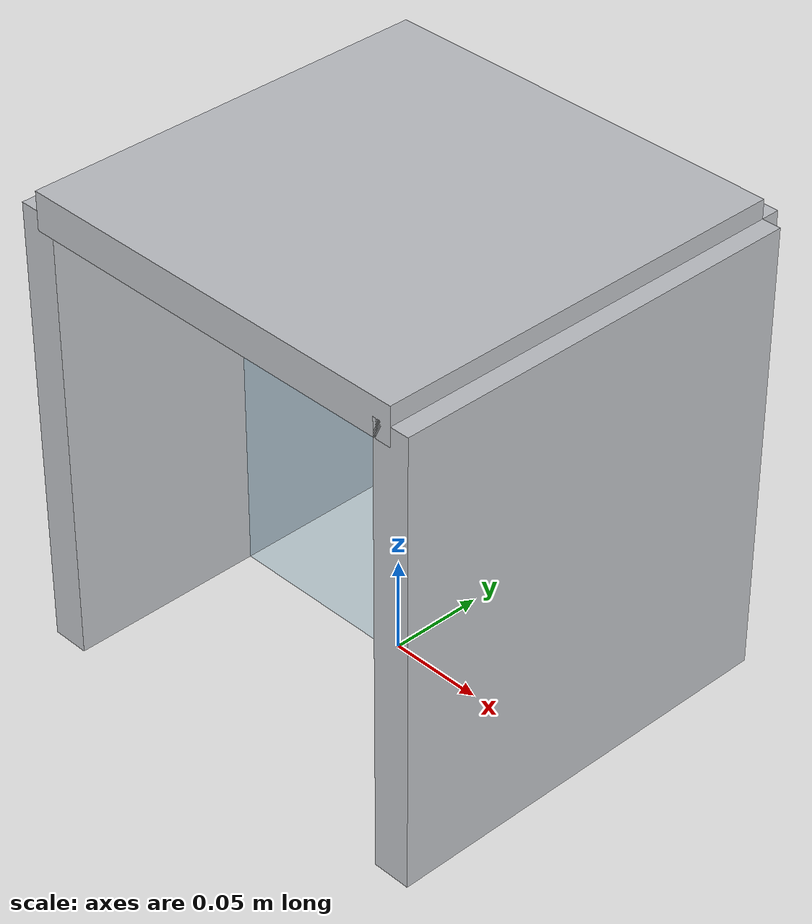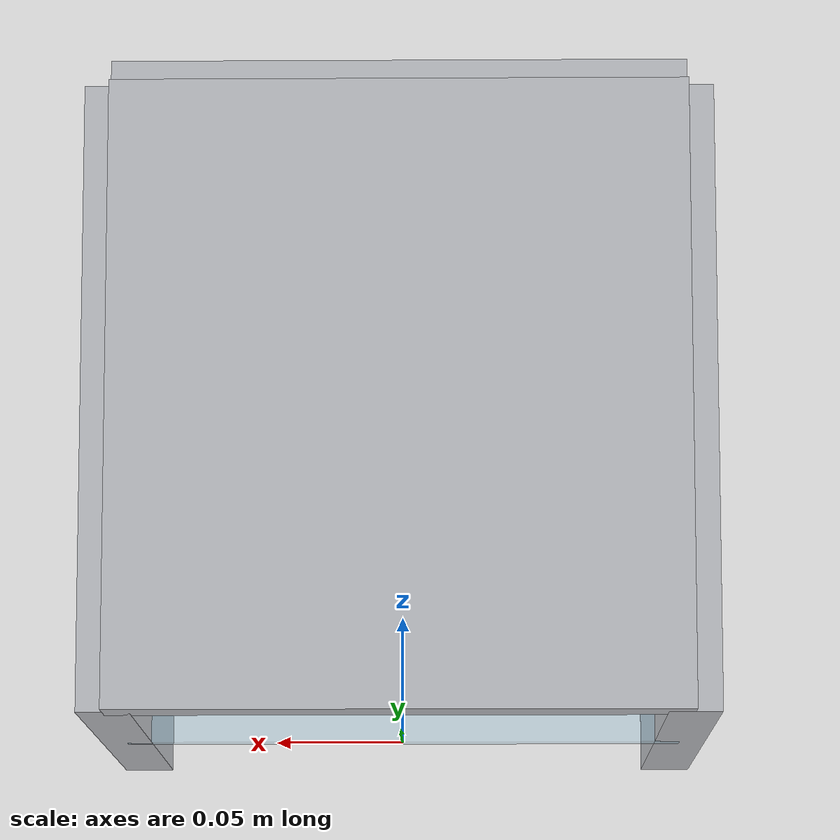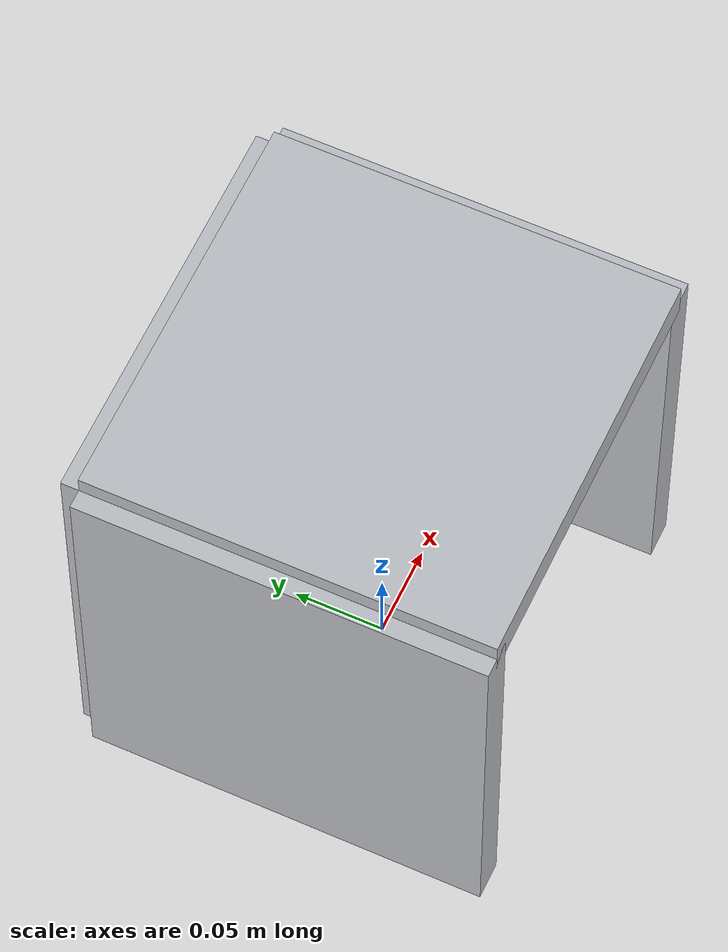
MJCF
<?xml version="1.0" encoding="utf-8"?>
<mujoco model="environmental_chamber">
  <compiler angle="radian" autolimits="true"/>
  <default>
    <default class="body"><geom contype="1" conaffinity="1"/></default>
  </default>
  <worldbody>
    <body name="base">
      <geom type="box" size="0.11 0.01 0.12" pos="0 0.11 0.12" rgba="0.75 0.76 0.78 1" class="body"/>
      <geom type="box" size="0.01 0.11 0.12" pos="-0.11 0 0.12" rgba="0.75 0.76 0.78 1" class="body"/>
      <geom type="box" size="0.01 0.11 0.12" pos="0.11 0 0.12" rgba="0.75 0.76 0.78 1" class="body"/>
      <geom type="box" size="0.11 0.11 0.01" pos="0 0 0.24" rgba="0.75 0.76 0.78 1" class="body"/>
      <body name="door" pos="-0.11 0.0 0.12">
        <joint name="door_joint" type="hinge" axis="0 0 1" range="0 1.8" damping="0.6" frictionloss="0.3"/>
  <geom type="box" size="0.11 0.005 0.12" pos="0.11 0 0" rgba="0.6 0.8 0.9 0.35" class="body"/>
      </body>
    </body>
  </worldbody>
</mujoco>
